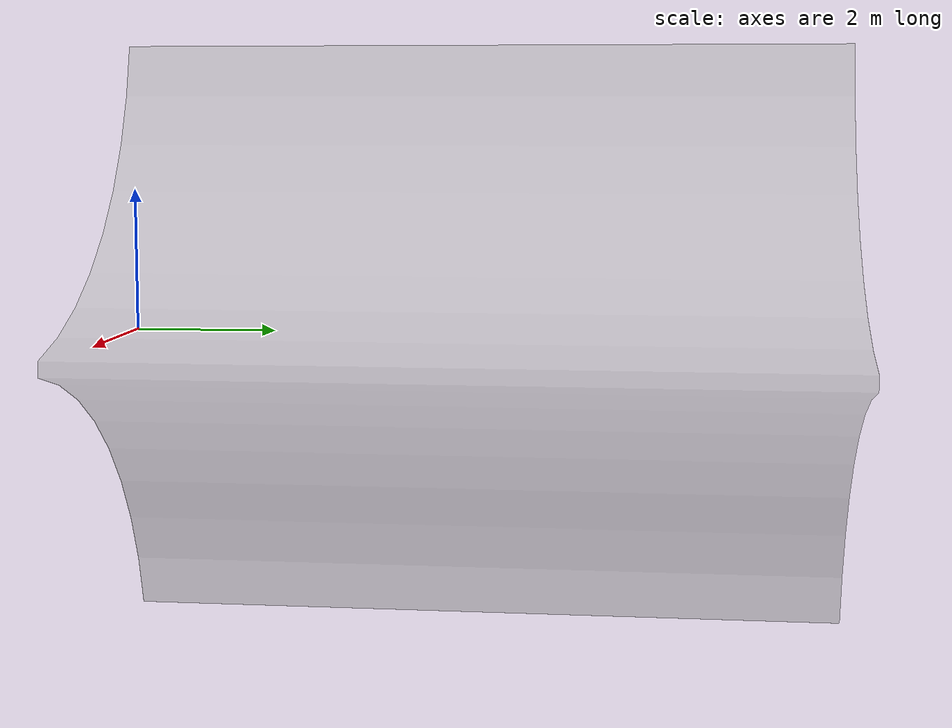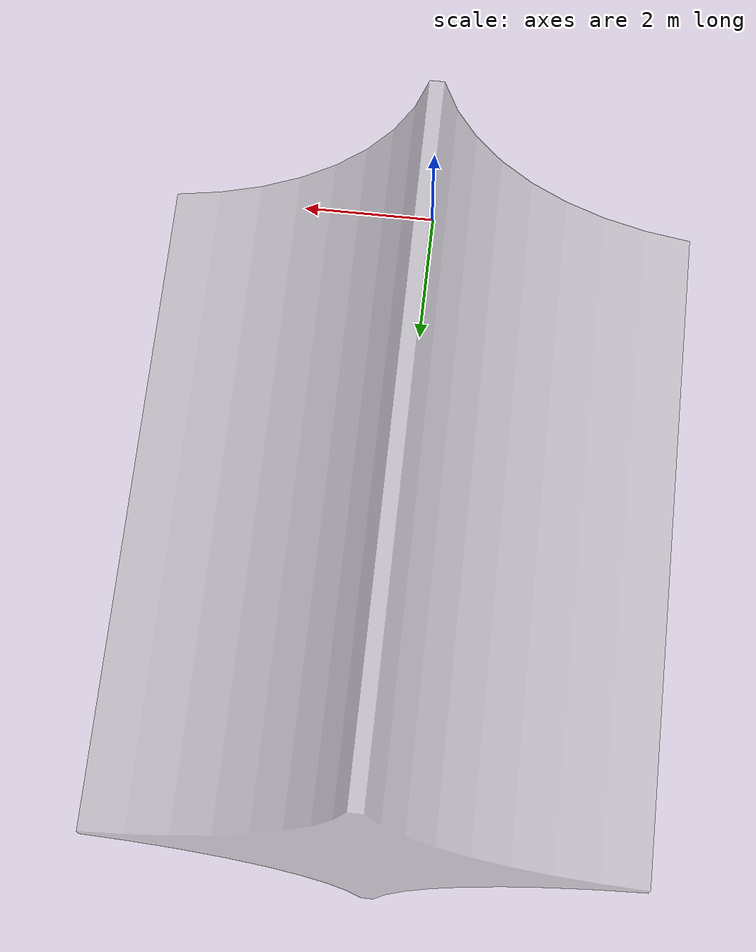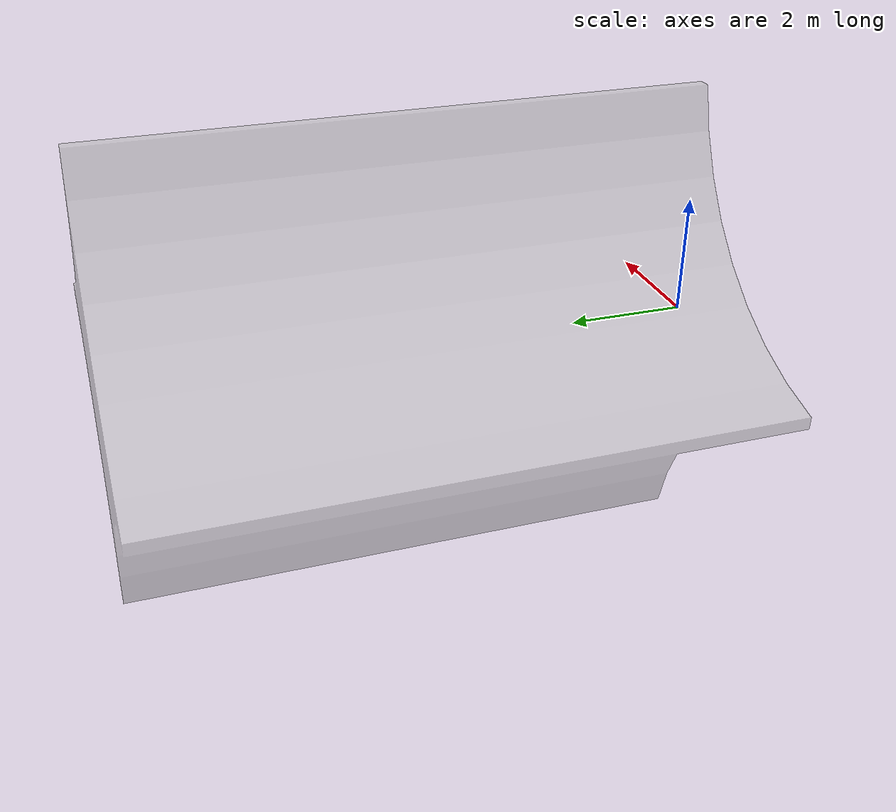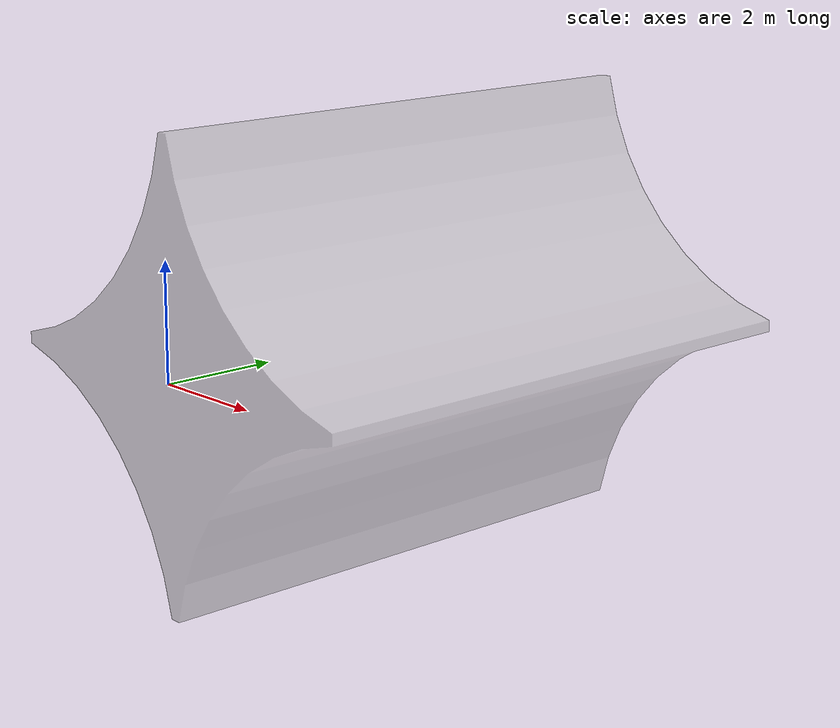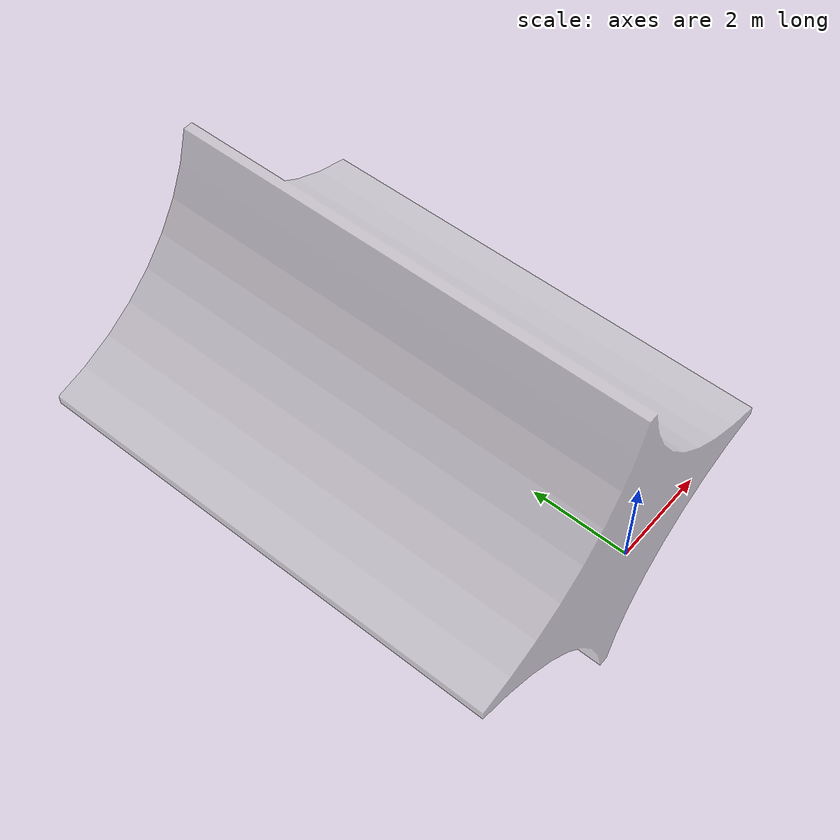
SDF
<?xml version="1.0" ?>

<sdf version="1.5">
  <model name='column'>

    <static>true</static>

    <link name="link">

      <pose>0 0 0.0 0 0 0</pose>

      <visual name="visual">

        <geometry>
          <mesh>
            <uri>model://column/meshes/column.obj</uri>
            <scale>0.001 0.001 0.001</scale>
          </mesh>
        </geometry>

        <material>
          <script>
            <uri>model://column/materials/scripts</uri>
            <uri>model://column/materials/textures</uri>
            <name>Task02/Glass</name>
          </script>
          <shader type='vertex'>
            <normal_map>__default__</normal_map>
          </shader>
        </material>

        <cast_shadows>1</cast_shadows>

      </visual>

      <collision name="collision">
        <geometry>
          <mesh>
            <uri>model://column/meshes/column.obj</uri>
            <scale>0.001 0.001 0.001</scale>
          </mesh>
        </geometry>
      </collision>

    </link>

  </model>
</sdf>
